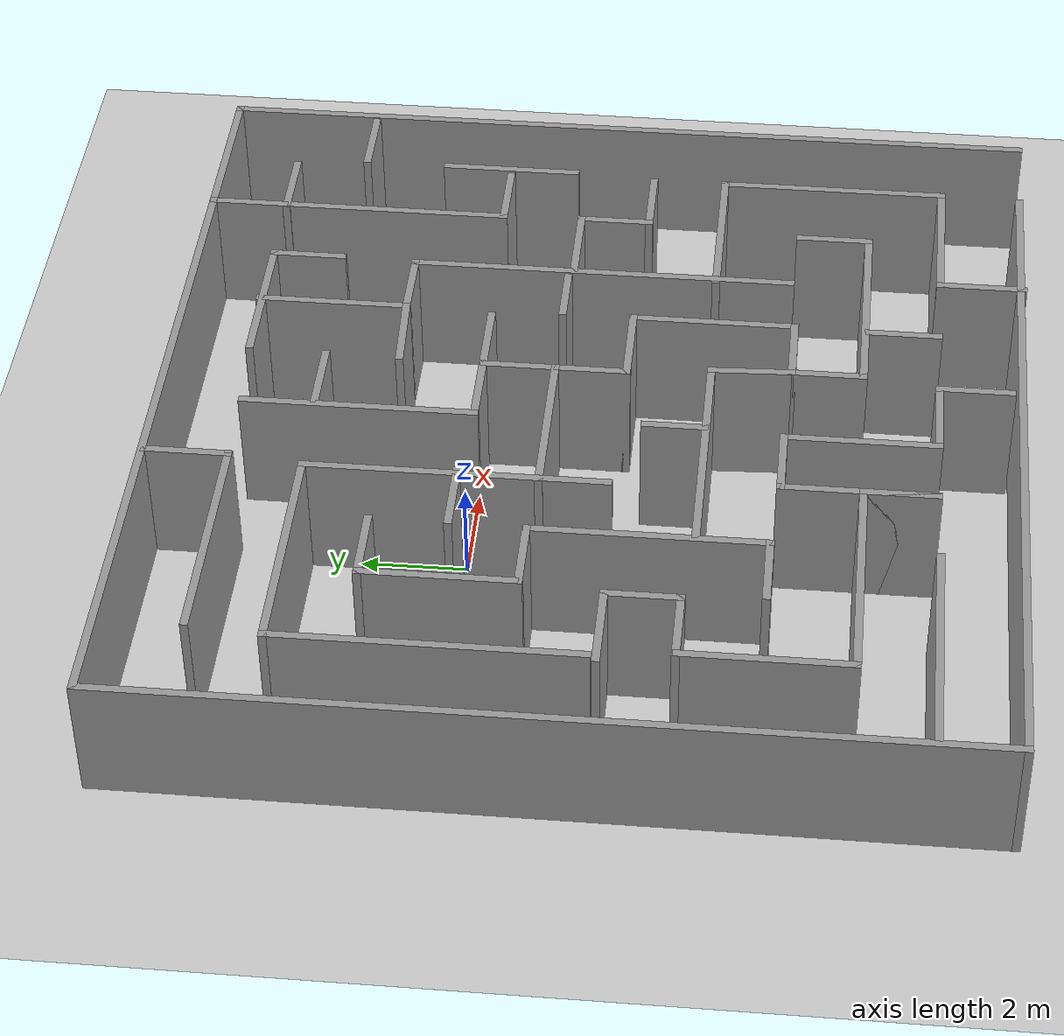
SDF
<sdf version="1.4">
 <world name="default">
  <light name="sun" type="directional">
   <pose>0 0 10 0 -0 0</pose>
   <diffuse>0.8 0.8 0.8 1</diffuse>
   <specular>0.2 0.2 0.2 1</specular>
   <attenuation>
    <range>1000</range>
    <constant>0.9</constant>
    <linear>0.01</linear>
    <quadratic>0.001</quadratic>
   </attenuation>
   <direction>0.5 0.1 -0.9</direction>
  </light>
  <model name="ground_plane">
   <static>1</static>
   <link name="link">
    <collision name="collision">
     <geometry><plane><normal>0 0 1</normal><size>100 100</size></plane></geometry>
     <surface><friction><ode><mu>100</mu><mu2>50</mu2></ode></friction></surface>
    </collision>
    <visual name="visual">
     <cast_shadows>0</cast_shadows>
     <geometry><plane><normal>0 0 1</normal><size>100 100</size></plane></geometry>
     <material>
      <script><uri>file://media/materials/scripts/gazebo.material</uri><name>Gazebo/Grey</name></script>
     </material>
    </visual>
    <velocity_decay><linear>0</linear><angular>0</angular></velocity_decay>
   </link>
  </model>
  <scene><ambient>0.4 0.4 0.4 1</ambient><background>0.7 0.7 0.7 1</background><shadows>0</shadows></scene>
  <physics type="ode">
   <max_step_size>0.001</max_step_size>
   <real_time_factor>1</real_time_factor>
   <real_time_update_rate>1000</real_time_update_rate>
   <gravity>0 0 -9.8</gravity>
  </physics>
  <spherical_coordinates>
   <surface_model>EARTH_WGS84</surface_model>
   <latitude_deg>0</latitude_deg>
   <longitude_deg>0</longitude_deg>
   <elevation>0</elevation>
   <heading_deg>0</heading_deg>
  </spherical_coordinates>
  <include><uri>model://maze_tb</uri><pose>2.4 -2.1 0 0 0 0</pose></include>
 </world>
</sdf>

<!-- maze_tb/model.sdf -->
<sdf version='1.6'>
  <model name='maze_tb'>
    <pose frame=''>-0.515239 -0.264002 0 0 -0 0</pose>
    <link name='Wall_0'>
      <collision name='Wall_0_Collision'>
        <geometry>
          <box>
            <size>16.75 0.15 2.5</size>
          </box>
        </geometry>
        <pose frame=''>0 0 1.25 0 -0 0</pose>
      </collision>
      <visual name='Wall_0_Visual'>
        <pose frame=''>0 0 1.25 0 -0 0</pose>
        <geometry>
          <box>
            <size>16.75 0.15 2.5</size>
          </box>
        </geometry>
        <material>
          <script>
            <uri>file://media/materials/scripts/gazebo.material</uri>
            <name>Gazebo/Grey</name>
          </script>
          <ambient>1 1 1 1</ambient>
        </material>
        <meta>
          <layer>0</layer>
        </meta>
      </visual>
      <pose frame=''>0 8.07264 0 0 -0 0</pose>
    </link>
    <link name='Wall_1'>
      <collision name='Wall_1_Collision'>
        <geometry>
          <box>
            <size>16.25 0.15 2.5</size>
          </box>
        </geometry>
        <pose frame=''>0 0 1.25 0 -0 0</pose>
      </collision>
      <visual name='Wall_1_Visual'>
        <pose frame=''>0 0 1.25 0 -0 0</pose>
        <geometry>
          <box>
            <size>16.25 0.15 2.5</size>
          </box>
        </geometry>
        <material>
          <script>
            <uri>file://media/materials/scripts/gazebo.material</uri>
            <name>Gazebo/Grey</name>
          </script>
          <ambient>1 1 1 1</ambient>
        </material>
        <meta>
          <layer>0</layer>
        </meta>
      </visual>
      <pose frame=''>8.3 0.022645 0 0 0 -1.5708</pose>
    </link>
    <link name='Wall_11'>
      <collision name='Wall_11_Collision'>
        <geometry>
          <box>
            <size>2.75 0.15 2.5</size>
          </box>
        </geometry>
        <pose frame=''>0 0 1.25 0 -0 0</pose>
      </collision>
      <visual name='Wall_11_Visual'>
        <pose frame=''>0 0 1.25 0 -0 0</pose>
        <geometry>
          <box>
            <size>2.75 0.15 2.5</size>
          </box>
        </geometry>
        <material>
          <script>
            <uri>file://media/materials/scripts/gazebo.material</uri>
            <name>Gazebo/Grey</name>
          </script>
          <ambient>1 1 1 1</ambient>
        </material>
        <meta>
          <layer>0</layer>
        </meta>
      </visual>
      <pose frame=''>6.73266 2.22782 0 0 0 -1.5708</pose>
    </link>
    <link name='Wall_13'>
      <collision name='Wall_13_Collision'>
        <geometry>
          <box>
            <size>1.5 0.15 2.5</size>
          </box>
        </geometry>
        <pose frame=''>0 0 1.25 0 -0 0</pose>
      </collision>
      <visual name='Wall_13_Visual'>
        <pose frame=''>0 0 1.25 0 -0 0</pose>
        <geometry>
          <box>
            <size>1.5 0.15 2.5</size>
          </box>
        </geometry>
        <material>
          <script>
            <uri>file://media/materials/scripts/gazebo.material</uri>
            <name>Gazebo/Grey</name>
          </script>
          <ambient>1 1 1 1</ambient>
        </material>
        <meta>
          <layer>0</layer>
        </meta>
      </visual>
      <pose frame=''>5.84659 6.58838 0 0 -0 3.14159</pose>
    </link>
    <link name='Wall_15'>
      <collision name='Wall_15_Collision'>
        <geometry>
          <box>
            <size>1.5 0.15 2.5</size>
          </box>
        </geometry>
        <pose frame=''>0 0 1.25 0 -0 0</pose>
      </collision>
      <visual name='Wall_15_Visual'>
        <pose frame=''>0 0 1.25 0 -0 0</pose>
        <geometry>
          <box>
            <size>1.5 0.15 2.5</size>
          </box>
        </geometry>
        <material>
          <script>
            <uri>file://media/materials/scripts/gazebo.material</uri>
            <name>Gazebo/Grey</name>
          </script>
          <ambient>1 1 1 1</ambient>
        </material>
        <meta>
          <layer>0</layer>
        </meta>
      </visual>
      <pose frame=''>7.44284 5.18122 0 0 -0 0</pose>
    </link>
    <link name='Wall_17'>
      <collision name='Wall_17_Collision'>
        <geometry>
          <box>
            <size>4.5 0.15 2.5</size>
          </box>
        </geometry>
        <pose frame=''>0 0 1.25 0 -0 0</pose>
      </collision>
      <visual name='Wall_17_Visual'>
        <pose frame=''>0 0 1.25 0 -0 0</pose>
        <geometry>
          <box>
            <size>4.5 0.15 2.5</size>
          </box>
        </geometry>
        <material>
          <script>
            <uri>file://media/materials/scripts/gazebo.material</uri>
            <name>Gazebo/Grey</name>
          </script>
          <ambient>1 1 1 1</ambient>
        </material>
        <meta>
          <layer>0</layer>
        </meta>
      </visual>
      <pose frame=''>-6.00043 -6.5322 0 0 -0 3.14159</pose>
    </link>
    <link name='Wall_19'>
      <collision name='Wall_19_Collision'>
        <geometry>
          <box>
            <size>4.5 0.15 2.5</size>
          </box>
        </geometry>
        <pose frame=''>0 0 1.25 0 -0 0</pose>
      </collision>
      <visual name='Wall_19_Visual'>
        <pose frame=''>0 0 1.25 0 -0 0</pose>
        <geometry>
          <box>
            <size>4.5 0.15 2.5</size>
          </box>
        </geometry>
        <material>
          <script>
            <uri>file://media/materials/scripts/gazebo.material</uri>
            <name>Gazebo/Grey</name>
          </script>
          <ambient>1 1 1 1</ambient>
        </material>
        <meta>
          <layer>0</layer>
        </meta>
      </visual>
      <pose frame=''>-4.60369 5.07855 0 0 -0 0</pose>
    </link>
    <link name='Wall_20'>
      <collision name='Wall_20_Collision'>
        <geometry>
          <box>
            <size>5.75 0.15 2.5</size>
          </box>
        </geometry>
        <pose frame=''>0 0 1.25 0 -0 0</pose>
      </collision>
      <visual name='Wall_20_Visual'>
        <pose frame=''>0 0 1.25 0 -0 0</pose>
        <geometry>
          <box>
            <size>5.75 0.15 2.5</size>
          </box>
        </geometry>
        <material>
          <script>
            <uri>file://media/materials/scripts/gazebo.material</uri>
            <name>Gazebo/Grey</name>
          </script>
          <ambient>1 1 1 1</ambient>
        </material>
        <meta>
          <layer>0</layer>
        </meta>
      </visual>
      <pose frame=''>-2.42869 2.27855 0 0 0 -1.5708</pose>
    </link>
    <link name='Wall_22'>
      <collision name='Wall_22_Collision'>
        <geometry>
          <box>
            <size>5.75 0.15 2.5</size>
          </box>
        </geometry>
        <pose frame=''>0 0 1.25 0 -0 0</pose>
      </collision>
      <visual name='Wall_22_Visual'>
        <pose frame=''>0 0 1.25 0 -0 0</pose>
        <geometry>
          <box>
            <size>5.75 0.15 2.5</size>
          </box>
        </geometry>
        <material>
          <script>
            <uri>file://media/materials/scripts/gazebo.material</uri>
            <name>Gazebo/Grey</name>
          </script>
          <ambient>1 1 1 1</ambient>
        </material>
        <meta>
          <layer>0</layer>
        </meta>
      </visual>
      <pose frame=''>-6.77869 2.27855 0 0 0 -1.5708</pose>
    </link>
    <link name='Wall_24'>
      <collision name='Wall_24_Collision'>
        <geometry>
          <box>
            <size>1.75 0.15 2.5</size>
          </box>
        </geometry>
        <pose frame=''>0 0 1.25 0 -0 0</pose>
      </collision>
      <visual name='Wall_24_Visual'>
        <pose frame=''>0 0 1.25 0 -0 0</pose>
        <geometry>
          <box>
            <size>1.75 0.15 2.5</size>
          </box>
        </geometry>
        <material>
          <script>
            <uri>file://media/materials/scripts/gazebo.material</uri>
            <name>Gazebo/Grey</name>
          </script>
          <ambient>1 1 1 1</ambient>
        </material>
        <meta>
          <layer>0</layer>
        </meta>
      </visual>
      <pose frame=''>-6.06088 -0.684907 0 0 -0 3.14159</pose>
    </link>
    <link name='Wall_26'>
      <collision name='Wall_26_Collision'>
        <geometry>
          <box>
            <size>1.5 0.15 2.5</size>
          </box>
        </geometry>
        <pose frame=''>0 0 1.25 0 -0 0</pose>
      </collision>
      <visual name='Wall_26_Visual'>
        <pose frame=''>0 0 1.25 0 -0 0</pose>
        <geometry>
          <box>
            <size>1.5 0.15 2.5</size>
          </box>
        </geometry>
        <material>
          <script>
            <uri>file://media/materials/scripts/gazebo.material</uri>
            <name>Gazebo/Grey</name>
          </script>
          <ambient>1 1 1 1</ambient>
        </material>
        <meta>
          <layer>0</layer>
        </meta>
      </visual>
      <pose frame=''>-4.42666 3.68182 0 0 -0 3.14159</pose>
    </link>
    <link name='Wall_27'>
      <collision name='Wall_27_Collision'>
        <geometry>
          <box>
            <size>3 0.15 2.5</size>
          </box>
        </geometry>
        <pose frame=''>0 0 1.25 0 -0 0</pose>
      </collision>
      <visual name='Wall_27_Visual'>
        <pose frame=''>0 0 1.25 0 -0 0</pose>
        <geometry>
          <box>
            <size>3 0.15 2.5</size>
          </box>
        </geometry>
        <material>
          <script>
            <uri>file://media/materials/scripts/gazebo.material</uri>
            <name>Gazebo/Grey</name>
          </script>
          <ambient>1 1 1 1</ambient>
        </material>
        <meta>
          <layer>0</layer>
        </meta>
      </visual>
      <pose frame=''>-5.10166 2.25682 0 0 0 -1.5708</pose>
    </link>
    <link name='Wall_28'>
      <collision name='Wall_28_Collision'>
        <geometry>
          <box>
            <size>1.5 0.15 2.5</size>
          </box>
        </geometry>
        <pose frame=''>0 0 1.25 0 -0 0</pose>
      </collision>
      <visual name='Wall_28_Visual'>
        <pose frame=''>0 0 1.25 0 -0 0</pose>
        <geometry>
          <box>
            <size>1.5 0.15 2.5</size>
          </box>
        </geometry>
        <material>
          <script>
            <uri>file://media/materials/scripts/gazebo.material</uri>
            <name>Gazebo/Grey</name>
          </script>
          <ambient>1 1 1 1</ambient>
        </material>
        <meta>
          <layer>0</layer>
        </meta>
      </visual>
      <pose frame=''>-4.42666 0.831821 0 0 -0 0</pose>
    </link>
    <link name='Wall_29'>
      <collision name='Wall_29_Collision'>
        <geometry>
          <box>
            <size>4.5 0.15 2.5</size>
          </box>
        </geometry>
        <pose frame=''>0 0 1.25 0 -0 0</pose>
      </collision>
      <visual name='Wall_29_Visual'>
        <pose frame=''>0 0 1.25 0 -0 0</pose>
        <geometry>
          <box>
            <size>4.5 0.15 2.5</size>
          </box>
        </geometry>
        <material>
          <script>
            <uri>file://media/materials/scripts/gazebo.material</uri>
            <name>Gazebo/Grey</name>
          </script>
          <ambient>1 1 1 1</ambient>
        </material>
        <meta>
          <layer>0</layer>
        </meta>
      </visual>
      <pose frame=''>-3.75166 -1.34318 0 0 0 -1.5708</pose>
    </link>
    <link name='Wall_3'>
      <collision name='Wall_3_Collision'>
        <geometry>
          <box>
            <size>16.25 0.15 2.5</size>
          </box>
        </geometry>
        <pose frame=''>0 0 1.25 0 -0 0</pose>
      </collision>
      <visual name='Wall_3_Visual'>
        <pose frame=''>0 0 1.25 0 -0 0</pose>
        <geometry>
          <box>
            <size>16.25 0.15 2.5</size>
          </box>
        </geometry>
        <material>
          <script>
            <uri>file://media/materials/scripts/gazebo.material</uri>
            <name>Gazebo/Grey</name>
          </script>
          <ambient>1 1 1 1</ambient>
        </material>
        <meta>
          <layer>0</layer>
        </meta>
      </visual>
      <pose frame=''>-8.3 0.022645 0 0 -0 1.5708</pose>
    </link>
    <link name='Wall_30'>
      <collision name='Wall_30_Collision'>
        <geometry>
          <box>
            <size>1.5 0.15 2.5</size>
          </box>
        </geometry>
        <pose frame=''>0 0 1.25 0 -0 0</pose>
      </collision>
      <visual name='Wall_30_Visual'>
        <pose frame=''>0 0 1.25 0 -0 0</pose>
        <geometry>
          <box>
            <size>1.5 0.15 2.5</size>
          </box>
        </geometry>
        <material>
          <script>
            <uri>file://media/materials/scripts/gazebo.material</uri>
            <name>Gazebo/Grey</name>
          </script>
          <ambient>1 1 1 1</ambient>
        </material>
        <meta>
          <layer>0</layer>
        </meta>
      </visual>
      <pose frame=''>-4.42666 -3.51818 0 0 -0 3.14159</pose>
    </link>
    <link name='Wall_32'>
      <collision name='Wall_32_Collision'>
        <geometry>
          <box>
            <size>1.5 0.15 2.5</size>
          </box>
        </geometry>
        <pose frame=''>0 0 1.25 0 -0 0</pose>
      </collision>
      <visual name='Wall_32_Visual'>
        <pose frame=''>0 0 1.25 0 -0 0</pose>
        <geometry>
          <box>
            <size>1.5 0.15 2.5</size>
          </box>
        </geometry>
        <material>
          <script>
            <uri>file://media/materials/scripts/gazebo.material</uri>
            <name>Gazebo/Grey</name>
          </script>
          <ambient>1 1 1 1</ambient>
        </material>
        <meta>
          <layer>0</layer>
        </meta>
      </visual>
      <pose frame=''>-5.26088 -1.35991 0 0 0 -1.5708</pose>
    </link>
    <link name='Wall_33'>
      <collision name='Wall_33_Collision'>
        <geometry>
          <box>
            <size>1.5 0.15 2.5</size>
          </box>
        </geometry>
        <pose frame=''>0 0 1.25 0 -0 0</pose>
      </collision>
      <visual name='Wall_33_Visual'>
        <pose frame=''>0 0 1.25 0 -0 0</pose>
        <geometry>
          <box>
            <size>1.5 0.15 2.5</size>
          </box>
        </geometry>
        <material>
          <script>
            <uri>file://media/materials/scripts/gazebo.material</uri>
            <name>Gazebo/Grey</name>
          </script>
          <ambient>1 1 1 1</ambient>
        </material>
        <meta>
          <layer>0</layer>
        </meta>
      </visual>
      <pose frame=''>-5.93588 -2.03491 0 0 -0 3.14159</pose>
    </link>
    <link name='Wall_34'>
      <collision name='Wall_34_Collision'>
        <geometry>
          <box>
            <size>3.25 0.15 2.5</size>
          </box>
        </geometry>
        <pose frame=''>0 0 1.25 0 -0 0</pose>
      </collision>
      <visual name='Wall_34_Visual'>
        <pose frame=''>0 0 1.25 0 -0 0</pose>
        <geometry>
          <box>
            <size>3.25 0.15 2.5</size>
          </box>
        </geometry>
        <material>
          <script>
            <uri>file://media/materials/scripts/gazebo.material</uri>
            <name>Gazebo/Grey</name>
          </script>
          <ambient>1 1 1 1</ambient>
        </material>
        <meta>
          <layer>0</layer>
        </meta>
      </visual>
      <pose frame=''>-6.61088 -3.58491 0 0 0 -1.5708</pose>
    </link>
    <link name='Wall_35'>
      <collision name='Wall_35_Collision'>
        <geometry>
          <box>
            <size>4.5 0.15 2.5</size>
          </box>
        </geometry>
        <pose frame=''>0 0 1.25 0 -0 0</pose>
      </collision>
      <visual name='Wall_35_Visual'>
        <pose frame=''>0 0 1.25 0 -0 0</pose>
        <geometry>
          <box>
            <size>4.5 0.15 2.5</size>
          </box>
        </geometry>
        <material>
          <script>
            <uri>file://media/materials/scripts/gazebo.material</uri>
            <name>Gazebo/Grey</name>
          </script>
          <ambient>1 1 1 1</ambient>
        </material>
        <meta>
          <layer>0</layer>
        </meta>
      </visual>
      <pose frame=''>-4.43588 -5.13491 0 0 -0 0</pose>
    </link>
    <link name='Wall_36'>
      <collision name='Wall_36_Collision'>
        <geometry>
          <box>
            <size>1.5 0.15 2.5</size>
          </box>
        </geometry>
        <pose frame=''>0 0 1.25 0 -0 0</pose>
      </collision>
      <visual name='Wall_36_Visual'>
        <pose frame=''>0 0 1.25 0 -0 0</pose>
        <geometry>
          <box>
            <size>1.5 0.15 2.5</size>
          </box>
        </geometry>
        <material>
          <script>
            <uri>file://media/materials/scripts/gazebo.material</uri>
            <name>Gazebo/Grey</name>
          </script>
          <ambient>1 1 1 1</ambient>
        </material>
        <meta>
          <layer>0</layer>
        </meta>
      </visual>
      <pose frame=''>-2.26088 -5.80991 0 0 0 -1.5708</pose>
    </link>
    <link name='Wall_37'>
      <collision name='Wall_37_Collision'>
        <geometry>
          <box>
            <size>3 0.15 2.5</size>
          </box>
        </geometry>
        <pose frame=''>0 0 1.25 0 -0 0</pose>
      </collision>
      <visual name='Wall_37_Visual'>
        <pose frame=''>0 0 1.25 0 -0 0</pose>
        <geometry>
          <box>
            <size>3 0.15 2.5</size>
          </box>
        </geometry>
        <material>
          <script>
            <uri>file://media/materials/scripts/gazebo.material</uri>
            <name>Gazebo/Grey</name>
          </script>
          <ambient>1 1 1 1</ambient>
        </material>
        <meta>
          <layer>0</layer>
        </meta>
      </visual>
      <pose frame=''>-2.26088 -5.05991 0 0 -0 1.5708</pose>
    </link>
    <link name='Wall_38'>
      <collision name='Wall_38_Collision'>
        <geometry>
          <box>
            <size>1.5 0.15 2.5</size>
          </box>
        </geometry>
        <pose frame=''>0 0 1.25 0 -0 0</pose>
      </collision>
      <visual name='Wall_38_Visual'>
        <pose frame=''>0 0 1.25 0 -0 0</pose>
        <geometry>
          <box>
            <size>1.5 0.15 2.5</size>
          </box>
        </geometry>
        <material>
          <script>
            <uri>file://media/materials/scripts/gazebo.material</uri>
            <name>Gazebo/Grey</name>
          </script>
          <ambient>1 1 1 1</ambient>
        </material>
        <meta>
          <layer>0</layer>
        </meta>
      </visual>
      <pose frame=''>-1.58588 -3.63491 0 0 -0 0</pose>
    </link>
    <link name='Wall_39'>
      <collision name='Wall_39_Collision'>
        <geometry>
          <box>
            <size>3 0.15 2.5</size>
          </box>
        </geometry>
        <pose frame=''>0 0 1.25 0 -0 0</pose>
      </collision>
      <visual name='Wall_39_Visual'>
        <pose frame=''>0 0 1.25 0 -0 0</pose>
        <geometry>
          <box>
            <size>3 0.15 2.5</size>
          </box>
        </geometry>
        <material>
          <script>
            <uri>file://media/materials/scripts/gazebo.material</uri>
            <name>Gazebo/Grey</name>
          </script>
          <ambient>1 1 1 1</ambient>
        </material>
        <meta>
          <layer>0</layer>
        </meta>
      </visual>
      <pose frame=''>-0.910884 -5.05991 0 0 0 -1.5708</pose>
    </link>
    <link name='Wall_40'>
      <collision name='Wall_40_Collision'>
        <geometry>
          <box>
            <size>1.75 0.15 2.5</size>
          </box>
        </geometry>
        <pose frame=''>0 0 1.25 0 -0 0</pose>
      </collision>
      <visual name='Wall_40_Visual'>
        <pose frame=''>0 0 1.25 0 -0 0</pose>
        <geometry>
          <box>
            <size>1.75 0.15 2.5</size>
          </box>
        </geometry>
        <material>
          <script>
            <uri>file://media/materials/scripts/gazebo.material</uri>
            <name>Gazebo/Grey</name>
          </script>
          <ambient>1 1 1 1</ambient>
        </material>
        <meta>
          <layer>0</layer>
        </meta>
      </visual>
      <pose frame=''>-0.110884 -6.48491 0 0 -0 0</pose>
    </link>
    <link name='Wall_41'>
      <collision name='Wall_41_Collision'>
        <geometry>
          <box>
            <size>1.5 0.15 2.5</size>
          </box>
        </geometry>
        <pose frame=''>0 0 1.25 0 -0 0</pose>
      </collision>
      <visual name='Wall_41_Visual'>
        <pose frame=''>0 0 1.25 0 -0 0</pose>
        <geometry>
          <box>
            <size>1.5 0.15 2.5</size>
          </box>
        </geometry>
        <material>
          <script>
            <uri>file://media/materials/scripts/gazebo.material</uri>
            <name>Gazebo/Grey</name>
          </script>
          <ambient>1 1 1 1</ambient>
        </material>
        <meta>
          <layer>0</layer>
        </meta>
      </visual>
      <pose frame=''>0.689116 -7.15991 0 0 0 -1.5708</pose>
    </link>
    <link name='Wall_43'>
      <collision name='Wall_43_Collision'>
        <geometry>
          <box>
            <size>1.5 0.15 2.5</size>
          </box>
        </geometry>
        <pose frame=''>0 0 1.25 0 -0 0</pose>
      </collision>
      <visual name='Wall_43_Visual'>
        <pose frame=''>0 0 1.25 0 -0 0</pose>
        <geometry>
          <box>
            <size>1.5 0.15 2.5</size>
          </box>
        </geometry>
        <material>
          <script>
            <uri>file://media/materials/scripts/gazebo.material</uri>
            <name>Gazebo/Grey</name>
          </script>
          <ambient>1 1 1 1</ambient>
        </material>
        <meta>
          <layer>0</layer>
        </meta>
      </visual>
      <pose frame=''>-3.01548 2.24408 0 0 -0 0</pose>
    </link>
    <link name='Wall_45'>
      <collision name='Wall_45_Collision'>
        <geometry>
          <box>
            <size>4.5 0.15 2.5</size>
          </box>
        </geometry>
        <pose frame=''>0 0 1.25 0 -0 0</pose>
      </collision>
      <visual name='Wall_45_Visual'>
        <pose frame=''>0 0 1.25 0 -0 0</pose>
        <geometry>
          <box>
            <size>4.5 0.15 2.5</size>
          </box>
        </geometry>
        <material>
          <script>
            <uri>file://media/materials/scripts/gazebo.material</uri>
            <name>Gazebo/Grey</name>
          </script>
          <ambient>1 1 1 1</ambient>
        </material>
        <meta>
          <layer>0</layer>
        </meta>
      </visual>
      <pose frame=''>-0.753818 4.29053 0 0 0 -1.5708</pose>
    </link>
    <link name='Wall_46'>
      <collision name='Wall_46_Collision'>
        <geometry>
          <box>
            <size>3 0.15 2.5</size>
          </box>
        </geometry>
        <pose frame=''>0 0 1.25 0 -0 0</pose>
      </collision>
      <visual name='Wall_46_Visual'>
        <pose frame=''>0 0 1.25 0 -0 0</pose>
        <geometry>
          <box>
            <size>3 0.15 2.5</size>
          </box>
        </geometry>
        <material>
          <script>
            <uri>file://media/materials/scripts/gazebo.material</uri>
            <name>Gazebo/Grey</name>
          </script>
          <ambient>1 1 1 1</ambient>
        </material>
        <meta>
          <layer>0</layer>
        </meta>
      </visual>
      <pose frame=''>0.671182 2.11553 0 0 -0 0</pose>
    </link>
    <link name='Wall_48'>
      <collision name='Wall_48_Collision'>
        <geometry>
          <box>
            <size>1.5 0.15 2.5</size>
          </box>
        </geometry>
        <pose frame=''>0 0 1.25 0 -0 0</pose>
      </collision>
      <visual name='Wall_48_Visual'>
        <pose frame=''>0 0 1.25 0 -0 0</pose>
        <geometry>
          <box>
            <size>1.5 0.15 2.5</size>
          </box>
        </geometry>
        <material>
          <script>
            <uri>file://media/materials/scripts/gazebo.material</uri>
            <name>Gazebo/Grey</name>
          </script>
          <ambient>1 1 1 1</ambient>
        </material>
        <meta>
          <layer>0</layer>
        </meta>
      </visual>
      <pose frame=''>0.008923 5.11956 0 0 -0 3.14159</pose>
    </link>
    <link name='Wall_5'>
      <collision name='Wall_5_Collision'>
        <geometry>
          <box>
            <size>1.75 0.15 2.5</size>
          </box>
        </geometry>
        <pose frame=''>0 0 1.25 0 -0 0</pose>
      </collision>
      <visual name='Wall_5_Visual'>
        <pose frame=''>0 0 1.25 0 -0 0</pose>
        <geometry>
          <box>
            <size>1.75 0.15 2.5</size>
          </box>
        </geometry>
        <material>
          <script>
            <uri>file://media/materials/scripts/gazebo.material</uri>
            <name>Gazebo/Grey</name>
          </script>
          <ambient>1 1 1 1</ambient>
        </material>
        <meta>
          <layer>0</layer>
        </meta>
      </visual>
      <pose frame=''>-2.2731 7.26588 0 0 0 -1.5708</pose>
    </link>
    <link name='Wall_50'>
      <collision name='Wall_50_Collision'>
        <geometry>
          <box>
            <size>3.25 0.15 2.5</size>
          </box>
        </geometry>
        <pose frame=''>0 0 1.25 0 -0 0</pose>
      </collision>
      <visual name='Wall_50_Visual'>
        <pose frame=''>0 0 1.25 0 -0 0</pose>
        <geometry>
          <box>
            <size>3.25 0.15 2.5</size>
          </box>
        </geometry>
        <material>
          <script>
            <uri>file://media/materials/scripts/gazebo.material</uri>
            <name>Gazebo/Grey</name>
          </script>
          <ambient>1 1 1 1</ambient>
        </material>
        <meta>
          <layer>0</layer>
        </meta>
      </visual>
      <pose frame=''>-0.88628 0.745159 0 0 -0 0</pose>
    </link>
    <link name='Wall_51'>
      <collision name='Wall_51_Collision'>
        <geometry>
          <box>
            <size>1.5 0.15 2.5</size>
          </box>
        </geometry>
        <pose frame=''>0 0 1.25 0 -0 0</pose>
      </collision>
      <visual name='Wall_51_Visual'>
        <pose frame=''>0 0 1.25 0 -0 0</pose>
        <geometry>
          <box>
            <size>1.5 0.15 2.5</size>
          </box>
        </geometry>
        <material>
          <script>
            <uri>file://media/materials/scripts/gazebo.material</uri>
            <name>Gazebo/Grey</name>
          </script>
          <ambient>1 1 1 1</ambient>
        </material>
        <meta>
          <layer>0</layer>
        </meta>
      </visual>
      <pose frame=''>0.66372 1.42016 0 0 -0 1.5708</pose>
    </link>
    <link name='Wall_53'>
      <collision name='Wall_53_Collision'>
        <geometry>
          <box>
            <size>1.5 0.15 2.5</size>
          </box>
        </geometry>
        <pose frame=''>0 0 1.25 0 -0 0</pose>
      </collision>
      <visual name='Wall_53_Visual'>
        <pose frame=''>0 0 1.25 0 -0 0</pose>
        <geometry>
          <box>
            <size>1.5 0.15 2.5</size>
          </box>
        </geometry>
        <material>
          <script>
            <uri>file://media/materials/scripts/gazebo.material</uri>
            <name>Gazebo/Grey</name>
          </script>
          <ambient>1 1 1 1</ambient>
        </material>
        <meta>
          <layer>0</layer>
        </meta>
      </visual>
      <pose frame=''>0.66372 0.070159 0 0 0 -1.5708</pose>
    </link>
    <link name='Wall_54'>
      <collision name='Wall_54_Collision'>
        <geometry>
          <box>
            <size>1.75 0.15 2.5</size>
          </box>
        </geometry>
        <pose frame=''>0 0 1.25 0 -0 0</pose>
      </collision>
      <visual name='Wall_54_Visual'>
        <pose frame=''>0 0 1.25 0 -0 0</pose>
        <geometry>
          <box>
            <size>1.75 0.15 2.5</size>
          </box>
        </geometry>
        <material>
          <script>
            <uri>file://media/materials/scripts/gazebo.material</uri>
            <name>Gazebo/Grey</name>
          </script>
          <ambient>1 1 1 1</ambient>
        </material>
        <meta>
          <layer>0</layer>
        </meta>
      </visual>
      <pose frame=''>1.46372 -0.604841 0 0 -0 0</pose>
    </link>
    <link name='Wall_55'>
      <collision name='Wall_55_Collision'>
        <geometry>
          <box>
            <size>3.25 0.15 2.5</size>
          </box>
        </geometry>
        <pose frame=''>0 0 1.25 0 -0 0</pose>
      </collision>
      <visual name='Wall_55_Visual'>
        <pose frame=''>0 0 1.25 0 -0 0</pose>
        <geometry>
          <box>
            <size>3.25 0.15 2.5</size>
          </box>
        </geometry>
        <material>
          <script>
            <uri>file://media/materials/scripts/gazebo.material</uri>
            <name>Gazebo/Grey</name>
          </script>
          <ambient>1 1 1 1</ambient>
        </material>
        <meta>
          <layer>0</layer>
        </meta>
      </visual>
      <pose frame=''>2.26372 -2.15484 0 0 0 -1.5708</pose>
    </link>
    <link name='Wall_56'>
      <collision name='Wall_56_Collision'>
        <geometry>
          <box>
            <size>1.5 0.15 2.5</size>
          </box>
        </geometry>
        <pose frame=''>0 0 1.25 0 -0 0</pose>
      </collision>
      <visual name='Wall_56_Visual'>
        <pose frame=''>0 0 1.25 0 -0 0</pose>
        <geometry>
          <box>
            <size>1.5 0.15 2.5</size>
          </box>
        </geometry>
        <material>
          <script>
            <uri>file://media/materials/scripts/gazebo.material</uri>
            <name>Gazebo/Grey</name>
          </script>
          <ambient>1 1 1 1</ambient>
        </material>
        <meta>
          <layer>0</layer>
        </meta>
      </visual>
      <pose frame=''>1.58872 -3.70484 0 0 -0 3.14159</pose>
    </link>
    <link name='Wall_57'>
      <collision name='Wall_57_Collision'>
        <geometry>
          <box>
            <size>1.5 0.15 2.5</size>
          </box>
        </geometry>
        <pose frame=''>0 0 1.25 0 -0 0</pose>
      </collision>
      <visual name='Wall_57_Visual'>
        <pose frame=''>0 0 1.25 0 -0 0</pose>
        <geometry>
          <box>
            <size>1.5 0.15 2.5</size>
          </box>
        </geometry>
        <material>
          <script>
            <uri>file://media/materials/scripts/gazebo.material</uri>
            <name>Gazebo/Grey</name>
          </script>
          <ambient>1 1 1 1</ambient>
        </material>
        <meta>
          <layer>0</layer>
        </meta>
      </visual>
      <pose frame=''>0.91372 -4.37984 0 0 0 -1.5708</pose>
    </link>
    <link name='Wall_58'>
      <collision name='Wall_58_Collision'>
        <geometry>
          <box>
            <size>4.25 0.15 2.5</size>
          </box>
        </geometry>
        <pose frame=''>0 0 1.25 0 -0 0</pose>
      </collision>
      <visual name='Wall_58_Visual'>
        <pose frame=''>0 0 1.25 0 -0 0</pose>
        <geometry>
          <box>
            <size>4.25 0.15 2.5</size>
          </box>
        </geometry>
        <material>
          <script>
            <uri>file://media/materials/scripts/gazebo.material</uri>
            <name>Gazebo/Grey</name>
          </script>
          <ambient>1 1 1 1</ambient>
        </material>
        <meta>
          <layer>0</layer>
        </meta>
      </visual>
      <pose frame=''>2.96372 -5.05484 0 0 -0 0</pose>
    </link>
    <link name='Wall_59'>
      <collision name='Wall_59_Collision'>
        <geometry>
          <box>
            <size>1.5 0.15 2.5</size>
          </box>
        </geometry>
        <pose frame=''>0 0 1.25 0 -0 0</pose>
      </collision>
      <visual name='Wall_59_Visual'>
        <pose frame=''>0 0 1.25 0 -0 0</pose>
        <geometry>
          <box>
            <size>1.5 0.15 2.5</size>
          </box>
        </geometry>
        <material>
          <script>
            <uri>file://media/materials/scripts/gazebo.material</uri>
            <name>Gazebo/Grey</name>
          </script>
          <ambient>1 1 1 1</ambient>
        </material>
        <meta>
          <layer>0</layer>
        </meta>
      </visual>
      <pose frame=''>5.01372 -4.37984 0 0 -0 1.5708</pose>
    </link>
    <link name='Wall_6'>
      <collision name='Wall_6_Collision'>
        <geometry>
          <box>
            <size>4.5 0.15 2.5</size>
          </box>
        </geometry>
        <pose frame=''>0 0 1.25 0 -0 0</pose>
      </collision>
      <visual name='Wall_6_Visual'>
        <pose frame=''>0 0 1.25 0 -0 0</pose>
        <geometry>
          <box>
            <size>4.5 0.15 2.5</size>
          </box>
        </geometry>
        <material>
          <script>
            <uri>file://media/materials/scripts/gazebo.material</uri>
            <name>Gazebo/Grey</name>
          </script>
          <ambient>1 1 1 1</ambient>
        </material>
        <meta>
          <layer>0</layer>
        </meta>
      </visual>
      <pose frame=''>-4.4481 6.46588 0 0 -0 3.14159</pose>
    </link>
    <link name='Wall_61'>
      <collision name='Wall_61_Collision'>
        <geometry>
          <box>
            <size>4.75 0.15 2.5</size>
          </box>
        </geometry>
        <pose frame=''>0 0 1.25 0 -0 0</pose>
      </collision>
      <visual name='Wall_61_Visual'>
        <pose frame=''>0 0 1.25 0 -0 0</pose>
        <geometry>
          <box>
            <size>4.75 0.15 2.5</size>
          </box>
        </geometry>
        <material>
          <script>
            <uri>file://media/materials/scripts/gazebo.material</uri>
            <name>Gazebo/Grey</name>
          </script>
          <ambient>1 1 1 1</ambient>
        </material>
        <meta>
          <layer>0</layer>
        </meta>
      </visual>
      <pose frame=''>-1.45166 -2.1915 0 0 -0 0</pose>
    </link>
    <link name='Wall_62'>
      <collision name='Wall_62_Collision'>
        <geometry>
          <box>
            <size>1.66475 0.15 2.5</size>
          </box>
        </geometry>
        <pose frame=''>0 0 1.25 0 -0 0</pose>
      </collision>
      <visual name='Wall_62_Visual'>
        <pose frame=''>0 0 1.25 0 -0 0</pose>
        <geometry>
          <box>
            <size>1.66475 0.15 2.5</size>
          </box>
        </geometry>
        <material>
          <script>
            <uri>file://media/materials/scripts/gazebo.material</uri>
            <name>Gazebo/Grey</name>
          </script>
          <ambient>1 1 1 1</ambient>
        </material>
        <meta>
          <layer>0</layer>
        </meta>
      </visual>
      <pose frame=''>0.88103 -2.94817 0 0 0 -1.52762</pose>
    </link>
    <link name='Wall_64'>
      <collision name='Wall_64_Collision'>
        <geometry>
          <box>
            <size>1.25 0.15 2.5</size>
          </box>
        </geometry>
        <pose frame=''>0 0 1.25 0 -0 0</pose>
      </collision>
      <visual name='Wall_64_Visual'>
        <pose frame=''>0 0 1.25 0 -0 0</pose>
        <geometry>
          <box>
            <size>1.25 0.15 2.5</size>
          </box>
        </geometry>
        <material>
          <script>
            <uri>file://media/materials/scripts/gazebo.material</uri>
            <name>Gazebo/Grey</name>
          </script>
          <ambient>1 1 1 1</ambient>
        </material>
        <meta>
          <layer>0</layer>
        </meta>
      </visual>
      <pose frame=''>-0.784408 -1.61091 0 0 -0 1.5708</pose>
    </link>
    <link name='Wall_66'>
      <collision name='Wall_66_Collision'>
        <geometry>
          <box>
            <size>1.5 0.15 2.5</size>
          </box>
        </geometry>
        <pose frame=''>0 0 1.25 0 -0 0</pose>
      </collision>
      <visual name='Wall_66_Visual'>
        <pose frame=''>0 0 1.25 0 -0 0</pose>
        <geometry>
          <box>
            <size>1.5 0.15 2.5</size>
          </box>
        </geometry>
        <material>
          <script>
            <uri>file://media/materials/scripts/gazebo.material</uri>
            <name>Gazebo/Grey</name>
          </script>
          <ambient>1 1 1 1</ambient>
        </material>
        <meta>
          <layer>0</layer>
        </meta>
      </visual>
      <pose frame=''>2.21343 -5.77257 0 0 0 -1.5708</pose>
    </link>
    <link name='Wall_68'>
      <collision name='Wall_68_Collision'>
        <geometry>
          <box>
            <size>3 0.15 2.5</size>
          </box>
        </geometry>
        <pose frame=''>0 0 1.25 0 -0 0</pose>
      </collision>
      <visual name='Wall_68_Visual'>
        <pose frame=''>0 0 1.25 0 -0 0</pose>
        <geometry>
          <box>
            <size>3 0.15 2.5</size>
          </box>
        </geometry>
        <material>
          <script>
            <uri>file://media/materials/scripts/gazebo.material</uri>
            <name>Gazebo/Grey</name>
          </script>
          <ambient>1 1 1 1</ambient>
        </material>
        <meta>
          <layer>0</layer>
        </meta>
      </visual>
      <pose frame=''>2.20069 6.58789 0 0 -0 0</pose>
    </link>
    <link name='Wall_69'>
      <collision name='Wall_69_Collision'>
        <geometry>
          <box>
            <size>1.5 0.15 2.5</size>
          </box>
        </geometry>
        <pose frame=''>0 0 1.25 0 -0 0</pose>
      </collision>
      <visual name='Wall_69_Visual'>
        <pose frame=''>0 0 1.25 0 -0 0</pose>
        <geometry>
          <box>
            <size>1.5 0.15 2.5</size>
          </box>
        </geometry>
        <material>
          <script>
            <uri>file://media/materials/scripts/gazebo.material</uri>
            <name>Gazebo/Grey</name>
          </script>
          <ambient>1 1 1 1</ambient>
        </material>
        <meta>
          <layer>0</layer>
        </meta>
      </visual>
      <pose frame=''>3.62569 5.91289 0 0 0 -1.5708</pose>
    </link>
    <link name='Wall_71'>
      <collision name='Wall_71_Collision'>
        <geometry>
          <box>
            <size>3 0.15 2.5</size>
          </box>
        </geometry>
        <pose frame=''>0 0 1.25 0 -0 0</pose>
      </collision>
      <visual name='Wall_71_Visual'>
        <pose frame=''>0 0 1.25 0 -0 0</pose>
        <geometry>
          <box>
            <size>3 0.15 2.5</size>
          </box>
        </geometry>
        <material>
          <script>
            <uri>file://media/materials/scripts/gazebo.material</uri>
            <name>Gazebo/Grey</name>
          </script>
          <ambient>1 1 1 1</ambient>
        </material>
        <meta>
          <layer>0</layer>
        </meta>
      </visual>
      <pose frame=''>2.2252 5.20708 0 0 0 -1.5708</pose>
    </link>
    <link name='Wall_72'>
      <collision name='Wall_72_Collision'>
        <geometry>
          <box>
            <size>1.5 0.15 2.5</size>
          </box>
        </geometry>
        <pose frame=''>0 0 1.25 0 -0 0</pose>
      </collision>
      <visual name='Wall_72_Visual'>
        <pose frame=''>0 0 1.25 0 -0 0</pose>
        <geometry>
          <box>
            <size>1.5 0.15 2.5</size>
          </box>
        </geometry>
        <material>
          <script>
            <uri>file://media/materials/scripts/gazebo.material</uri>
            <name>Gazebo/Grey</name>
          </script>
          <ambient>1 1 1 1</ambient>
        </material>
        <meta>
          <layer>0</layer>
        </meta>
      </visual>
      <pose frame=''>2.9002 3.78208 0 0 -0 0</pose>
    </link>
    <link name='Wall_73'>
      <collision name='Wall_73_Collision'>
        <geometry>
          <box>
            <size>7.5 0.15 2.5</size>
          </box>
        </geometry>
        <pose frame=''>0 0 1.25 0 -0 0</pose>
      </collision>
      <visual name='Wall_73_Visual'>
        <pose frame=''>0 0 1.25 0 -0 0</pose>
        <geometry>
          <box>
            <size>7.5 0.15 2.5</size>
          </box>
        </geometry>
        <material>
          <script>
            <uri>file://media/materials/scripts/gazebo.material</uri>
            <name>Gazebo/Grey</name>
          </script>
          <ambient>1 1 1 1</ambient>
        </material>
        <meta>
          <layer>0</layer>
        </meta>
      </visual>
      <pose frame=''>3.5752 0.107078 0 0 0 -1.5708</pose>
    </link>
    <link name='Wall_75'>
      <collision name='Wall_75_Collision'>
        <geometry>
          <box>
            <size>1.75 0.15 2.5</size>
          </box>
        </geometry>
        <pose frame=''>0 0 1.25 0 -0 0</pose>
      </collision>
      <visual name='Wall_75_Visual'>
        <pose frame=''>0 0 1.25 0 -0 0</pose>
        <geometry>
          <box>
            <size>1.75 0.15 2.5</size>
          </box>
        </geometry>
        <material>
          <script>
            <uri>file://media/materials/scripts/gazebo.material</uri>
            <name>Gazebo/Grey</name>
          </script>
          <ambient>1 1 1 1</ambient>
        </material>
        <meta>
          <layer>0</layer>
        </meta>
      </visual>
      <pose frame=''>3.77306 -7.27264 0 0 -0 1.5708</pose>
    </link>
    <link name='Wall_76'>
      <collision name='Wall_76_Collision'>
        <geometry>
          <box>
            <size>3 0.15 2.5</size>
          </box>
        </geometry>
        <pose frame=''>0 0 1.25 0 -0 0</pose>
      </collision>
      <visual name='Wall_76_Visual'>
        <pose frame=''>0 0 1.25 0 -0 0</pose>
        <geometry>
          <box>
            <size>3 0.15 2.5</size>
          </box>
        </geometry>
        <material>
          <script>
            <uri>file://media/materials/scripts/gazebo.material</uri>
            <name>Gazebo/Grey</name>
          </script>
          <ambient>1 1 1 1</ambient>
        </material>
        <meta>
          <layer>0</layer>
        </meta>
      </visual>
      <pose frame=''>5.19806 -6.47264 0 0 -0 0</pose>
    </link>
    <link name='Wall_77'>
      <collision name='Wall_77_Collision'>
        <geometry>
          <box>
            <size>4.5 0.15 2.5</size>
          </box>
        </geometry>
        <pose frame=''>0 0 1.25 0 -0 0</pose>
      </collision>
      <visual name='Wall_77_Visual'>
        <pose frame=''>0 0 1.25 0 -0 0</pose>
        <geometry>
          <box>
            <size>4.5 0.15 2.5</size>
          </box>
        </geometry>
        <material>
          <script>
            <uri>file://media/materials/scripts/gazebo.material</uri>
            <name>Gazebo/Grey</name>
          </script>
          <ambient>1 1 1 1</ambient>
        </material>
        <meta>
          <layer>0</layer>
        </meta>
      </visual>
      <pose frame=''>6.62306 -4.29765 0 0 -0 1.5708</pose>
    </link>
    <link name='Wall_78'>
      <collision name='Wall_78_Collision'>
        <geometry>
          <box>
            <size>3.25 0.15 2.5</size>
          </box>
        </geometry>
        <pose frame=''>0 0 1.25 0 -0 0</pose>
      </collision>
      <visual name='Wall_78_Visual'>
        <pose frame=''>0 0 1.25 0 -0 0</pose>
        <geometry>
          <box>
            <size>3.25 0.15 2.5</size>
          </box>
        </geometry>
        <material>
          <script>
            <uri>file://media/materials/scripts/gazebo.material</uri>
            <name>Gazebo/Grey</name>
          </script>
          <ambient>1 1 1 1</ambient>
        </material>
        <meta>
          <layer>0</layer>
        </meta>
      </visual>
      <pose frame=''>5.07306 -2.12264 0 0 -0 3.14159</pose>
    </link>
    <link name='Wall_8'>
      <collision name='Wall_8_Collision'>
        <geometry>
          <box>
            <size>6 0.15 2.5</size>
          </box>
        </geometry>
        <pose frame=''>0 0 1.25 0 -0 0</pose>
      </collision>
      <visual name='Wall_8_Visual'>
        <pose frame=''>0 0 1.25 0 -0 0</pose>
        <geometry>
          <box>
            <size>6 0.15 2.5</size>
          </box>
        </geometry>
        <material>
          <script>
            <uri>file://media/materials/scripts/gazebo.material</uri>
            <name>Gazebo/Grey</name>
          </script>
          <ambient>1 1 1 1</ambient>
        </material>
        <meta>
          <layer>0</layer>
        </meta>
      </visual>
      <pose frame=''>5.1848 5.14088 0 0 0 -1.5708</pose>
    </link>
    <link name='Wall_80'>
      <collision name='Wall_80_Collision'>
        <geometry>
          <box>
            <size>1.6643 0.15 2.5</size>
          </box>
        </geometry>
        <pose frame=''>0 0 1.25 0 -0 0</pose>
      </collision>
      <visual name='Wall_80_Visual'>
        <pose frame=''>0 0 1.25 0 -0 0</pose>
        <geometry>
          <box>
            <size>1.6643 0.15 2.5</size>
          </box>
        </geometry>
        <material>
          <script>
            <uri>file://media/materials/scripts/gazebo.material</uri>
            <name>Gazebo/Grey</name>
          </script>
          <ambient>1 1 1 1</ambient>
        </material>
        <meta>
          <layer>0</layer>
        </meta>
      </visual>
      <pose frame=''>1.46885 3.74716 0 0 -0 0.046135</pose>
    </link>
    <link name='Wall_82'>
      <collision name='Wall_82_Collision'>
        <geometry>
          <box>
            <size>1.25 0.15 2.5</size>
          </box>
        </geometry>
        <pose frame=''>0 0 1.25 0 -0 0</pose>
      </collision>
      <visual name='Wall_82_Visual'>
        <pose frame=''>0 0 1.25 0 -0 0</pose>
        <geometry>
          <box>
            <size>1.25 0.15 2.5</size>
          </box>
        </geometry>
        <material>
          <script>
            <uri>file://media/materials/scripts/gazebo.material</uri>
            <name>Gazebo/Grey</name>
          </script>
          <ambient>1 1 1 1</ambient>
        </material>
        <meta>
          <layer>0</layer>
        </meta>
      </visual>
      <pose frame=''>2.84556 0.757224 0 0 -0 0</pose>
    </link>
    <link name='Wall_84'>
      <collision name='Wall_84_Collision'>
        <geometry>
          <box>
            <size>1.5 0.15 2.5</size>
          </box>
        </geometry>
        <pose frame=''>0 0 1.25 0 -0 0</pose>
      </collision>
      <visual name='Wall_84_Visual'>
        <pose frame=''>0 0 1.25 0 -0 0</pose>
        <geometry>
          <box>
            <size>1.5 0.15 2.5</size>
          </box>
        </geometry>
        <material>
          <script>
            <uri>file://media/materials/scripts/gazebo.material</uri>
            <name>Gazebo/Grey</name>
          </script>
          <ambient>1 1 1 1</ambient>
        </material>
        <meta>
          <layer>0</layer>
        </meta>
      </visual>
      <pose frame=''>5.91236 -0.685105 0 0 -0 3.14159</pose>
    </link>
    <link name='Wall_85'>
      <collision name='Wall_85_Collision'>
        <geometry>
          <box>
            <size>1.5 0.15 2.5</size>
          </box>
        </geometry>
        <pose frame=''>0 0 1.25 0 -0 0</pose>
      </collision>
      <visual name='Wall_85_Visual'>
        <pose frame=''>0 0 1.25 0 -0 0</pose>
        <geometry>
          <box>
            <size>1.5 0.15 2.5</size>
          </box>
        </geometry>
        <material>
          <script>
            <uri>file://media/materials/scripts/gazebo.material</uri>
            <name>Gazebo/Grey</name>
          </script>
          <ambient>1 1 1 1</ambient>
        </material>
        <meta>
          <layer>0</layer>
        </meta>
      </visual>
      <pose frame=''>5.23736 -0.010105 0 0 -0 1.5708</pose>
    </link>
    <link name='Wall_86'>
      <collision name='Wall_86_Collision'>
        <geometry>
          <box>
            <size>1.75 0.15 2.5</size>
          </box>
        </geometry>
        <pose frame=''>0 0 1.25 0 -0 0</pose>
      </collision>
      <visual name='Wall_86_Visual'>
        <pose frame=''>0 0 1.25 0 -0 0</pose>
        <geometry>
          <box>
            <size>1.75 0.15 2.5</size>
          </box>
        </geometry>
        <material>
          <script>
            <uri>file://media/materials/scripts/gazebo.material</uri>
            <name>Gazebo/Grey</name>
          </script>
          <ambient>1 1 1 1</ambient>
        </material>
        <meta>
          <layer>0</layer>
        </meta>
      </visual>
      <pose frame=''>4.43736 0.664895 0 0 -0 3.14159</pose>
    </link>
    <link name='Wall_88'>
      <collision name='Wall_88_Collision'>
        <geometry>
          <box>
            <size>15 0.15 2.5</size>
          </box>
        </geometry>
        <pose frame=''>0 0 1.25 0 -0 0</pose>
      </collision>
      <visual name='Wall_88_Visual'>
        <pose frame=''>0 0 1.25 0 -0 0</pose>
        <geometry>
          <box>
            <size>15 0.15 2.5</size>
          </box>
        </geometry>
        <material>
          <script>
            <uri>file://media/materials/scripts/gazebo.material</uri>
            <name>Gazebo/Grey</name>
          </script>
          <ambient>1 1 1 1</ambient>
        </material>
        <meta>
          <layer>0</layer>
        </meta>
      </visual>
      <pose frame=''>-0.875 -8.02736 0 0 -0 0</pose>
    </link>
    <link name='Wall_9'>
      <collision name='Wall_9_Collision'>
        <geometry>
          <box>
            <size>1.5 0.15 2.5</size>
          </box>
        </geometry>
        <pose frame=''>0 0 1.25 0 -0 0</pose>
      </collision>
      <visual name='Wall_9_Visual'>
        <pose frame=''>0 0 1.25 0 -0 0</pose>
        <geometry>
          <box>
            <size>1.5 0.15 2.5</size>
          </box>
        </geometry>
        <material>
          <script>
            <uri>file://media/materials/scripts/gazebo.material</uri>
            <name>Gazebo/Grey</name>
          </script>
          <ambient>1 1 1 1</ambient>
        </material>
        <meta>
          <layer>0</layer>
        </meta>
      </visual>
      <pose frame=''>5.8598 2.21588 0 0 -0 0</pose>
    </link>
    <static>1</static>
  </model>
</sdf>
